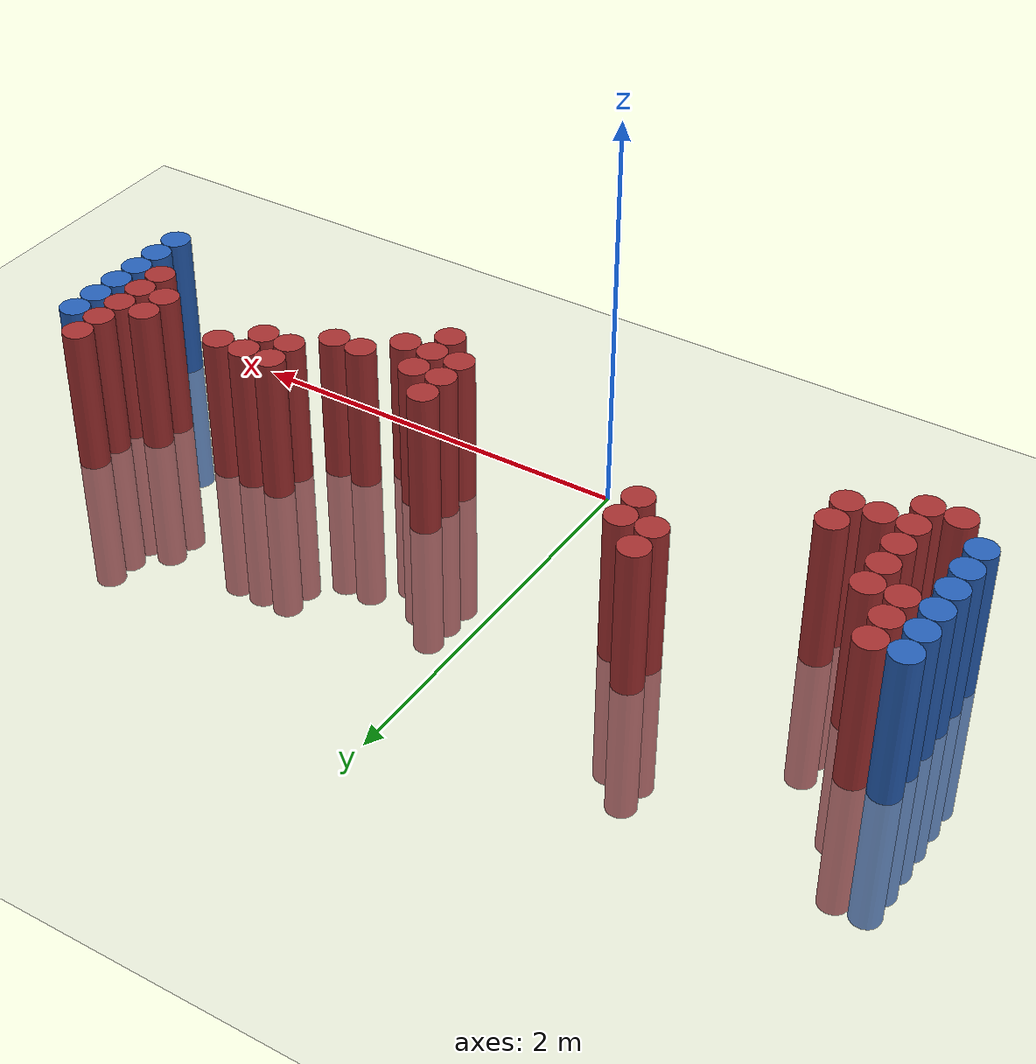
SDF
<sdf version="1.6">
 <world name="default">
  <model name="ground_plane">
   <static>1</static>
   <link name="link">
    <collision name="collision">
     <geometry><plane><normal>0 0 1</normal><size>100 100</size></plane></geometry>
     <surface><friction><ode><mu>100</mu><mu2>50</mu2></ode></friction></surface>
    </collision>
    <visual name="visual">
     <cast_shadows>0</cast_shadows>
     <geometry><plane><normal>0 0 1</normal><size>100 100</size></plane></geometry>
     <material>
      <script><uri>file://media/materials/scripts/gazebo.material</uri><name>Gazebo/Grey</name></script>
     </material>
    </visual>
   </link>
  </model>
  <model name="unit_cylinder_97">
   <static>1</static>
   <pose>-1.925000 0.325000 0.000000 0.000000 0.000000 0.000000</pose>
   <link name="link">
    <inertial>
     <mass>1</mass>
     <inertia><ixx>0.145833</ixx><ixy>0</ixy><ixz>0</ixz><iyy>0.145833</iyy><iyz>0</iyz><izz>0.125</izz></inertia>
    </inertial>
    <collision name="collision">
     <geometry><cylinder><radius>0.075000</radius><length>1.5</length></cylinder></geometry>
    </collision>
    <visual name="visual">
     <geometry><cylinder><radius>0.075000</radius><length>1.5</length></cylinder></geometry>
     <material>
      <ambient>0.152000 0.379000 0.720000 1</ambient>
      <diffuse>0.152000 0.379000 0.720000 1</diffuse>
     </material>
     <material>
      <script><name>Gazebo/Grey</name><uri>file://media/materials/scripts/gazebo.material</uri></script>
     </material>
    </visual>
   </link>
  </model>
  <model name="unit_cylinder_98">
   <static>1</static>
   <pose>-1.925000 0.475000 0.000000 0.000000 0.000000 0.000000</pose>
   <link name="link">
    <inertial>
     <mass>1</mass>
     <inertia><ixx>0.145833</ixx><ixy>0</ixy><ixz>0</ixz><iyy>0.145833</iyy><iyz>0</iyz><izz>0.125</izz></inertia>
    </inertial>
    <collision name="collision">
     <geometry><cylinder><radius>0.075000</radius><length>1.5</length></cylinder></geometry>
    </collision>
    <visual name="visual">
     <geometry><cylinder><radius>0.075000</radius><length>1.5</length></cylinder></geometry>
     <material>
      <ambient>0.152000 0.379000 0.720000 1</ambient>
      <diffuse>0.152000 0.379000 0.720000 1</diffuse>
     </material>
     <material>
      <script><name>Gazebo/Grey</name><uri>file://media/materials/scripts/gazebo.material</uri></script>
     </material>
    </visual>
   </link>
  </model>
  <model name="unit_cylinder_99">
   <static>1</static>
   <pose>-1.925000 0.625000 0.000000 0.000000 0.000000 0.000000</pose>
   <link name="link">
    <inertial>
     <mass>1</mass>
     <inertia><ixx>0.145833</ixx><ixy>0</ixy><ixz>0</ixz><iyy>0.145833</iyy><iyz>0</iyz><izz>0.125</izz></inertia>
    </inertial>
    <collision name="collision">
     <geometry><cylinder><radius>0.075000</radius><length>1.5</length></cylinder></geometry>
    </collision>
    <visual name="visual">
     <geometry><cylinder><radius>0.075000</radius><length>1.5</length></cylinder></geometry>
     <material>
      <ambient>0.152000 0.379000 0.720000 1</ambient>
      <diffuse>0.152000 0.379000 0.720000 1</diffuse>
     </material>
     <material>
      <script><name>Gazebo/Grey</name><uri>file://media/materials/scripts/gazebo.material</uri></script>
     </material>
    </visual>
   </link>
  </model>
  <model name="unit_cylinder_100">
   <static>1</static>
   <pose>-1.925000 0.775000 0.000000 0.000000 0.000000 0.000000</pose>
   <link name="link">
    <inertial>
     <mass>1</mass>
     <inertia><ixx>0.145833</ixx><ixy>0</ixy><ixz>0</ixz><iyy>0.145833</iyy><iyz>0</iyz><izz>0.125</izz></inertia>
    </inertial>
    <collision name="collision">
     <geometry><cylinder><radius>0.075000</radius><length>1.5</length></cylinder></geometry>
    </collision>
    <visual name="visual">
     <geometry><cylinder><radius>0.075000</radius><length>1.5</length></cylinder></geometry>
     <material>
      <ambient>0.152000 0.379000 0.720000 1</ambient>
      <diffuse>0.152000 0.379000 0.720000 1</diffuse>
     </material>
     <material>
      <script><name>Gazebo/Grey</name><uri>file://media/materials/scripts/gazebo.material</uri></script>
     </material>
    </visual>
   </link>
  </model>
  <model name="unit_cylinder_101">
   <static>1</static>
   <pose>-1.925000 0.925000 0.000000 0.000000 0.000000 0.000000</pose>
   <link name="link">
    <inertial>
     <mass>1</mass>
     <inertia><ixx>0.145833</ixx><ixy>0</ixy><ixz>0</ixz><iyy>0.145833</iyy><iyz>0</iyz><izz>0.125</izz></inertia>
    </inertial>
    <collision name="collision">
     <geometry><cylinder><radius>0.075000</radius><length>1.5</length></cylinder></geometry>
    </collision>
    <visual name="visual">
     <geometry><cylinder><radius>0.075000</radius><length>1.5</length></cylinder></geometry>
     <material>
      <ambient>0.152000 0.379000 0.720000 1</ambient>
      <diffuse>0.152000 0.379000 0.720000 1</diffuse>
     </material>
     <material>
      <script><name>Gazebo/Grey</name><uri>file://media/materials/scripts/gazebo.material</uri></script>
     </material>
    </visual>
   </link>
  </model>
  <model name="unit_cylinder_102">
   <static>1</static>
   <pose>-1.925000 1.075000 0.000000 0.000000 0.000000 0.000000</pose>
   <link name="link">
    <inertial>
     <mass>1</mass>
     <inertia><ixx>0.145833</ixx><ixy>0</ixy><ixz>0</ixz><iyy>0.145833</iyy><iyz>0</iyz><izz>0.125</izz></inertia>
    </inertial>
    <collision name="collision">
     <geometry><cylinder><radius>0.075000</radius><length>1.5</length></cylinder></geometry>
    </collision>
    <visual name="visual">
     <geometry><cylinder><radius>0.075000</radius><length>1.5</length></cylinder></geometry>
     <material>
      <ambient>0.152000 0.379000 0.720000 1</ambient>
      <diffuse>0.152000 0.379000 0.720000 1</diffuse>
     </material>
     <material>
      <script><name>Gazebo/Grey</name><uri>file://media/materials/scripts/gazebo.material</uri></script>
     </material>
    </visual>
   </link>
  </model>
  <model name="unit_cylinder_126">
   <static>1</static>
   <pose>-1.775000 0.175000 0.000000 0.000000 0.000000 0.000000</pose>
   <link name="link">
    <inertial>
     <mass>1</mass>
     <inertia><ixx>0.145833</ixx><ixy>0</ixy><ixz>0</ixz><iyy>0.145833</iyy><iyz>0</iyz><izz>0.125</izz></inertia>
    </inertial>
    <collision name="collision">
     <geometry><cylinder><radius>0.075000</radius><length>1.5</length></cylinder></geometry>
    </collision>
    <visual name="visual">
     <geometry><cylinder><radius>0.075000</radius><length>1.5</length></cylinder></geometry>
     <material>
      <ambient>0.648000 0.192000 0.192000 1</ambient>
      <diffuse>0.648000 0.192000 0.192000 1</diffuse>
     </material>
     <material>
      <script><name>Gazebo/Grey</name><uri>file://media/materials/scripts/gazebo.material</uri></script>
     </material>
    </visual>
   </link>
  </model>
  <model name="unit_cylinder_127">
   <static>1</static>
   <pose>-1.775000 0.775000 0.000000 0.000000 0.000000 0.000000</pose>
   <link name="link">
    <inertial>
     <mass>1</mass>
     <inertia><ixx>0.145833</ixx><ixy>0</ixy><ixz>0</ixz><iyy>0.145833</iyy><iyz>0</iyz><izz>0.125</izz></inertia>
    </inertial>
    <collision name="collision">
     <geometry><cylinder><radius>0.075000</radius><length>1.5</length></cylinder></geometry>
    </collision>
    <visual name="visual">
     <geometry><cylinder><radius>0.075000</radius><length>1.5</length></cylinder></geometry>
     <material>
      <ambient>0.648000 0.192000 0.192000 1</ambient>
      <diffuse>0.648000 0.192000 0.192000 1</diffuse>
     </material>
     <material>
      <script><name>Gazebo/Grey</name><uri>file://media/materials/scripts/gazebo.material</uri></script>
     </material>
    </visual>
   </link>
  </model>
  <model name="unit_cylinder_128">
   <static>1</static>
   <pose>-1.775000 0.925000 0.000000 0.000000 0.000000 0.000000</pose>
   <link name="link">
    <inertial>
     <mass>1</mass>
     <inertia><ixx>0.145833</ixx><ixy>0</ixy><ixz>0</ixz><iyy>0.145833</iyy><iyz>0</iyz><izz>0.125</izz></inertia>
    </inertial>
    <collision name="collision">
     <geometry><cylinder><radius>0.075000</radius><length>1.5</length></cylinder></geometry>
    </collision>
    <visual name="visual">
     <geometry><cylinder><radius>0.075000</radius><length>1.5</length></cylinder></geometry>
     <material>
      <ambient>0.648000 0.192000 0.192000 1</ambient>
      <diffuse>0.648000 0.192000 0.192000 1</diffuse>
     </material>
     <material>
      <script><name>Gazebo/Grey</name><uri>file://media/materials/scripts/gazebo.material</uri></script>
     </material>
    </visual>
   </link>
  </model>
  <model name="unit_cylinder_129">
   <static>1</static>
   <pose>-1.775000 1.075000 0.000000 0.000000 0.000000 0.000000</pose>
   <link name="link">
    <inertial>
     <mass>1</mass>
     <inertia><ixx>0.145833</ixx><ixy>0</ixy><ixz>0</ixz><iyy>0.145833</iyy><iyz>0</iyz><izz>0.125</izz></inertia>
    </inertial>
    <collision name="collision">
     <geometry><cylinder><radius>0.075000</radius><length>1.5</length></cylinder></geometry>
    </collision>
    <visual name="visual">
     <geometry><cylinder><radius>0.075000</radius><length>1.5</length></cylinder></geometry>
     <material>
      <ambient>0.648000 0.192000 0.192000 1</ambient>
      <diffuse>0.648000 0.192000 0.192000 1</diffuse>
     </material>
     <material>
      <script><name>Gazebo/Grey</name><uri>file://media/materials/scripts/gazebo.material</uri></script>
     </material>
    </visual>
   </link>
  </model>
  <model name="unit_cylinder_139">
   <static>1</static>
   <pose>-1.625000 0.175000 0.000000 0.000000 0.000000 0.000000</pose>
   <link name="link">
    <inertial>
     <mass>1</mass>
     <inertia><ixx>0.145833</ixx><ixy>0</ixy><ixz>0</ixz><iyy>0.145833</iyy><iyz>0</iyz><izz>0.125</izz></inertia>
    </inertial>
    <collision name="collision">
     <geometry><cylinder><radius>0.075000</radius><length>1.5</length></cylinder></geometry>
    </collision>
    <visual name="visual">
     <geometry><cylinder><radius>0.075000</radius><length>1.5</length></cylinder></geometry>
     <material>
      <ambient>0.648000 0.192000 0.192000 1</ambient>
      <diffuse>0.648000 0.192000 0.192000 1</diffuse>
     </material>
     <material>
      <script><name>Gazebo/Grey</name><uri>file://media/materials/scripts/gazebo.material</uri></script>
     </material>
    </visual>
   </link>
  </model>
  <model name="unit_cylinder_140">
   <static>1</static>
   <pose>-1.625000 0.325000 0.000000 0.000000 0.000000 0.000000</pose>
   <link name="link">
    <inertial>
     <mass>1</mass>
     <inertia><ixx>0.145833</ixx><ixy>0</ixy><ixz>0</ixz><iyy>0.145833</iyy><iyz>0</iyz><izz>0.125</izz></inertia>
    </inertial>
    <collision name="collision">
     <geometry><cylinder><radius>0.075000</radius><length>1.5</length></cylinder></geometry>
    </collision>
    <visual name="visual">
     <geometry><cylinder><radius>0.075000</radius><length>1.5</length></cylinder></geometry>
     <material>
      <ambient>0.648000 0.192000 0.192000 1</ambient>
      <diffuse>0.648000 0.192000 0.192000 1</diffuse>
     </material>
     <material>
      <script><name>Gazebo/Grey</name><uri>file://media/materials/scripts/gazebo.material</uri></script>
     </material>
    </visual>
   </link>
  </model>
  <model name="unit_cylinder_141">
   <static>1</static>
   <pose>-1.625000 0.475000 0.000000 0.000000 0.000000 0.000000</pose>
   <link name="link">
    <inertial>
     <mass>1</mass>
     <inertia><ixx>0.145833</ixx><ixy>0</ixy><ixz>0</ixz><iyy>0.145833</iyy><iyz>0</iyz><izz>0.125</izz></inertia>
    </inertial>
    <collision name="collision">
     <geometry><cylinder><radius>0.075000</radius><length>1.5</length></cylinder></geometry>
    </collision>
    <visual name="visual">
     <geometry><cylinder><radius>0.075000</radius><length>1.5</length></cylinder></geometry>
     <material>
      <ambient>0.648000 0.192000 0.192000 1</ambient>
      <diffuse>0.648000 0.192000 0.192000 1</diffuse>
     </material>
     <material>
      <script><name>Gazebo/Grey</name><uri>file://media/materials/scripts/gazebo.material</uri></script>
     </material>
    </visual>
   </link>
  </model>
  <model name="unit_cylinder_142">
   <static>1</static>
   <pose>-1.625000 0.625000 0.000000 0.000000 0.000000 0.000000</pose>
   <link name="link">
    <inertial>
     <mass>1</mass>
     <inertia><ixx>0.145833</ixx><ixy>0</ixy><ixz>0</ixz><iyy>0.145833</iyy><iyz>0</iyz><izz>0.125</izz></inertia>
    </inertial>
    <collision name="collision">
     <geometry><cylinder><radius>0.075000</radius><length>1.5</length></cylinder></geometry>
    </collision>
    <visual name="visual">
     <geometry><cylinder><radius>0.075000</radius><length>1.5</length></cylinder></geometry>
     <material>
      <ambient>0.648000 0.192000 0.192000 1</ambient>
      <diffuse>0.648000 0.192000 0.192000 1</diffuse>
     </material>
     <material>
      <script><name>Gazebo/Grey</name><uri>file://media/materials/scripts/gazebo.material</uri></script>
     </material>
    </visual>
   </link>
  </model>
  <model name="unit_cylinder_143">
   <static>1</static>
   <pose>-1.625000 0.775000 0.000000 0.000000 0.000000 0.000000</pose>
   <link name="link">
    <inertial>
     <mass>1</mass>
     <inertia><ixx>0.145833</ixx><ixy>0</ixy><ixz>0</ixz><iyy>0.145833</iyy><iyz>0</iyz><izz>0.125</izz></inertia>
    </inertial>
    <collision name="collision">
     <geometry><cylinder><radius>0.075000</radius><length>1.5</length></cylinder></geometry>
    </collision>
    <visual name="visual">
     <geometry><cylinder><radius>0.075000</radius><length>1.5</length></cylinder></geometry>
     <material>
      <ambient>0.648000 0.192000 0.192000 1</ambient>
      <diffuse>0.648000 0.192000 0.192000 1</diffuse>
     </material>
     <material>
      <script><name>Gazebo/Grey</name><uri>file://media/materials/scripts/gazebo.material</uri></script>
     </material>
    </visual>
   </link>
  </model>
  <model name="unit_cylinder_150">
   <static>1</static>
   <pose>-1.475000 0.325000 0.000000 0.000000 0.000000 0.000000</pose>
   <link name="link">
    <inertial>
     <mass>1</mass>
     <inertia><ixx>0.145833</ixx><ixy>0</ixy><ixz>0</ixz><iyy>0.145833</iyy><iyz>0</iyz><izz>0.125</izz></inertia>
    </inertial>
    <collision name="collision">
     <geometry><cylinder><radius>0.075000</radius><length>1.5</length></cylinder></geometry>
    </collision>
    <visual name="visual">
     <geometry><cylinder><radius>0.075000</radius><length>1.5</length></cylinder></geometry>
     <material>
      <ambient>0.648000 0.192000 0.192000 1</ambient>
      <diffuse>0.648000 0.192000 0.192000 1</diffuse>
     </material>
     <material>
      <script><name>Gazebo/Grey</name><uri>file://media/materials/scripts/gazebo.material</uri></script>
     </material>
    </visual>
   </link>
  </model>
  <model name="unit_cylinder_159">
   <static>1</static>
   <pose>-1.325000 0.325000 0.000000 0.000000 0.000000 0.000000</pose>
   <link name="link">
    <inertial>
     <mass>1</mass>
     <inertia><ixx>0.145833</ixx><ixy>0</ixy><ixz>0</ixz><iyy>0.145833</iyy><iyz>0</iyz><izz>0.125</izz></inertia>
    </inertial>
    <collision name="collision">
     <geometry><cylinder><radius>0.075000</radius><length>1.5</length></cylinder></geometry>
    </collision>
    <visual name="visual">
     <geometry><cylinder><radius>0.075000</radius><length>1.5</length></cylinder></geometry>
     <material>
      <ambient>0.648000 0.192000 0.192000 1</ambient>
      <diffuse>0.648000 0.192000 0.192000 1</diffuse>
     </material>
     <material>
      <script><name>Gazebo/Grey</name><uri>file://media/materials/scripts/gazebo.material</uri></script>
     </material>
    </visual>
   </link>
  </model>
  <model name="unit_cylinder_160">
   <static>1</static>
   <pose>-1.325000 0.475000 0.000000 0.000000 0.000000 0.000000</pose>
   <link name="link">
    <inertial>
     <mass>1</mass>
     <inertia><ixx>0.145833</ixx><ixy>0</ixy><ixz>0</ixz><iyy>0.145833</iyy><iyz>0</iyz><izz>0.125</izz></inertia>
    </inertial>
    <collision name="collision">
     <geometry><cylinder><radius>0.075000</radius><length>1.5</length></cylinder></geometry>
    </collision>
    <visual name="visual">
     <geometry><cylinder><radius>0.075000</radius><length>1.5</length></cylinder></geometry>
     <material>
      <ambient>0.648000 0.192000 0.192000 1</ambient>
      <diffuse>0.648000 0.192000 0.192000 1</diffuse>
     </material>
     <material>
      <script><name>Gazebo/Grey</name><uri>file://media/materials/scripts/gazebo.material</uri></script>
     </material>
    </visual>
   </link>
  </model>
  <model name="unit_cylinder_181">
   <static>1</static>
   <pose>-0.725000 0.925000 0.000000 0.000000 0.000000 0.000000</pose>
   <link name="link">
    <inertial>
     <mass>1</mass>
     <inertia><ixx>0.145833</ixx><ixy>0</ixy><ixz>0</ixz><iyy>0.145833</iyy><iyz>0</iyz><izz>0.125</izz></inertia>
    </inertial>
    <collision name="collision">
     <geometry><cylinder><radius>0.075000</radius><length>1.5</length></cylinder></geometry>
    </collision>
    <visual name="visual">
     <geometry><cylinder><radius>0.075000</radius><length>1.5</length></cylinder></geometry>
     <material>
      <ambient>0.648000 0.192000 0.192000 1</ambient>
      <diffuse>0.648000 0.192000 0.192000 1</diffuse>
     </material>
     <material>
      <script><name>Gazebo/Grey</name><uri>file://media/materials/scripts/gazebo.material</uri></script>
     </material>
    </visual>
   </link>
  </model>
  <model name="unit_cylinder_182">
   <static>1</static>
   <pose>-0.725000 1.075000 0.000000 0.000000 0.000000 0.000000</pose>
   <link name="link">
    <inertial>
     <mass>1</mass>
     <inertia><ixx>0.145833</ixx><ixy>0</ixy><ixz>0</ixz><iyy>0.145833</iyy><iyz>0</iyz><izz>0.125</izz></inertia>
    </inertial>
    <collision name="collision">
     <geometry><cylinder><radius>0.075000</radius><length>1.5</length></cylinder></geometry>
    </collision>
    <visual name="visual">
     <geometry><cylinder><radius>0.075000</radius><length>1.5</length></cylinder></geometry>
     <material>
      <ambient>0.648000 0.192000 0.192000 1</ambient>
      <diffuse>0.648000 0.192000 0.192000 1</diffuse>
     </material>
     <material>
      <script><name>Gazebo/Grey</name><uri>file://media/materials/scripts/gazebo.material</uri></script>
     </material>
    </visual>
   </link>
  </model>
  <model name="unit_cylinder_186">
   <static>1</static>
   <pose>-0.575000 0.775000 0.000000 0.000000 0.000000 0.000000</pose>
   <link name="link">
    <inertial>
     <mass>1</mass>
     <inertia><ixx>0.145833</ixx><ixy>0</ixy><ixz>0</ixz><iyy>0.145833</iyy><iyz>0</iyz><izz>0.125</izz></inertia>
    </inertial>
    <collision name="collision">
     <geometry><cylinder><radius>0.075000</radius><length>1.5</length></cylinder></geometry>
    </collision>
    <visual name="visual">
     <geometry><cylinder><radius>0.075000</radius><length>1.5</length></cylinder></geometry>
     <material>
      <ambient>0.648000 0.192000 0.192000 1</ambient>
      <diffuse>0.648000 0.192000 0.192000 1</diffuse>
     </material>
     <material>
      <script><name>Gazebo/Grey</name><uri>file://media/materials/scripts/gazebo.material</uri></script>
     </material>
    </visual>
   </link>
  </model>
  <model name="unit_cylinder_187">
   <static>1</static>
   <pose>-0.575000 0.925000 0.000000 0.000000 0.000000 0.000000</pose>
   <link name="link">
    <inertial>
     <mass>1</mass>
     <inertia><ixx>0.145833</ixx><ixy>0</ixy><ixz>0</ixz><iyy>0.145833</iyy><iyz>0</iyz><izz>0.125</izz></inertia>
    </inertial>
    <collision name="collision">
     <geometry><cylinder><radius>0.075000</radius><length>1.5</length></cylinder></geometry>
    </collision>
    <visual name="visual">
     <geometry><cylinder><radius>0.075000</radius><length>1.5</length></cylinder></geometry>
     <material>
      <ambient>0.648000 0.192000 0.192000 1</ambient>
      <diffuse>0.648000 0.192000 0.192000 1</diffuse>
     </material>
     <material>
      <script><name>Gazebo/Grey</name><uri>file://media/materials/scripts/gazebo.material</uri></script>
     </material>
    </visual>
   </link>
  </model>
  <model name="unit_cylinder_197">
   <static>1</static>
   <pose>0.625000 0.325000 0.000000 0.000000 0.000000 0.000000</pose>
   <link name="link">
    <inertial>
     <mass>1</mass>
     <inertia><ixx>0.145833</ixx><ixy>0</ixy><ixz>0</ixz><iyy>0.145833</iyy><iyz>0</iyz><izz>0.125</izz></inertia>
    </inertial>
    <collision name="collision">
     <geometry><cylinder><radius>0.075000</radius><length>1.5</length></cylinder></geometry>
    </collision>
    <visual name="visual">
     <geometry><cylinder><radius>0.075000</radius><length>1.5</length></cylinder></geometry>
     <material>
      <ambient>0.648000 0.192000 0.192000 1</ambient>
      <diffuse>0.648000 0.192000 0.192000 1</diffuse>
     </material>
     <material>
      <script><name>Gazebo/Grey</name><uri>file://media/materials/scripts/gazebo.material</uri></script>
     </material>
    </visual>
   </link>
  </model>
  <model name="unit_cylinder_198">
   <static>1</static>
   <pose>0.625000 0.475000 0.000000 0.000000 0.000000 0.000000</pose>
   <link name="link">
    <inertial>
     <mass>1</mass>
     <inertia><ixx>0.145833</ixx><ixy>0</ixy><ixz>0</ixz><iyy>0.145833</iyy><iyz>0</iyz><izz>0.125</izz></inertia>
    </inertial>
    <collision name="collision">
     <geometry><cylinder><radius>0.075000</radius><length>1.5</length></cylinder></geometry>
    </collision>
    <visual name="visual">
     <geometry><cylinder><radius>0.075000</radius><length>1.5</length></cylinder></geometry>
     <material>
      <ambient>0.648000 0.192000 0.192000 1</ambient>
      <diffuse>0.648000 0.192000 0.192000 1</diffuse>
     </material>
     <material>
      <script><name>Gazebo/Grey</name><uri>file://media/materials/scripts/gazebo.material</uri></script>
     </material>
    </visual>
   </link>
  </model>
  <model name="unit_cylinder_199">
   <static>1</static>
   <pose>0.625000 0.625000 0.000000 0.000000 0.000000 0.000000</pose>
   <link name="link">
    <inertial>
     <mass>1</mass>
     <inertia><ixx>0.145833</ixx><ixy>0</ixy><ixz>0</ixz><iyy>0.145833</iyy><iyz>0</iyz><izz>0.125</izz></inertia>
    </inertial>
    <collision name="collision">
     <geometry><cylinder><radius>0.075000</radius><length>1.5</length></cylinder></geometry>
    </collision>
    <visual name="visual">
     <geometry><cylinder><radius>0.075000</radius><length>1.5</length></cylinder></geometry>
     <material>
      <ambient>0.648000 0.192000 0.192000 1</ambient>
      <diffuse>0.648000 0.192000 0.192000 1</diffuse>
     </material>
     <material>
      <script><name>Gazebo/Grey</name><uri>file://media/materials/scripts/gazebo.material</uri></script>
     </material>
    </visual>
   </link>
  </model>
  <model name="unit_cylinder_200">
   <static>1</static>
   <pose>0.775000 0.175000 0.000000 0.000000 0.000000 0.000000</pose>
   <link name="link">
    <inertial>
     <mass>1</mass>
     <inertia><ixx>0.145833</ixx><ixy>0</ixy><ixz>0</ixz><iyy>0.145833</iyy><iyz>0</iyz><izz>0.125</izz></inertia>
    </inertial>
    <collision name="collision">
     <geometry><cylinder><radius>0.075000</radius><length>1.5</length></cylinder></geometry>
    </collision>
    <visual name="visual">
     <geometry><cylinder><radius>0.075000</radius><length>1.5</length></cylinder></geometry>
     <material>
      <ambient>0.648000 0.192000 0.192000 1</ambient>
      <diffuse>0.648000 0.192000 0.192000 1</diffuse>
     </material>
     <material>
      <script><name>Gazebo/Grey</name><uri>file://media/materials/scripts/gazebo.material</uri></script>
     </material>
    </visual>
   </link>
  </model>
  <model name="unit_cylinder_201">
   <static>1</static>
   <pose>0.775000 0.325000 0.000000 0.000000 0.000000 0.000000</pose>
   <link name="link">
    <inertial>
     <mass>1</mass>
     <inertia><ixx>0.145833</ixx><ixy>0</ixy><ixz>0</ixz><iyy>0.145833</iyy><iyz>0</iyz><izz>0.125</izz></inertia>
    </inertial>
    <collision name="collision">
     <geometry><cylinder><radius>0.075000</radius><length>1.5</length></cylinder></geometry>
    </collision>
    <visual name="visual">
     <geometry><cylinder><radius>0.075000</radius><length>1.5</length></cylinder></geometry>
     <material>
      <ambient>0.648000 0.192000 0.192000 1</ambient>
      <diffuse>0.648000 0.192000 0.192000 1</diffuse>
     </material>
     <material>
      <script><name>Gazebo/Grey</name><uri>file://media/materials/scripts/gazebo.material</uri></script>
     </material>
    </visual>
   </link>
  </model>
  <model name="unit_cylinder_202">
   <static>1</static>
   <pose>0.775000 0.475000 0.000000 0.000000 0.000000 0.000000</pose>
   <link name="link">
    <inertial>
     <mass>1</mass>
     <inertia><ixx>0.145833</ixx><ixy>0</ixy><ixz>0</ixz><iyy>0.145833</iyy><iyz>0</iyz><izz>0.125</izz></inertia>
    </inertial>
    <collision name="collision">
     <geometry><cylinder><radius>0.075000</radius><length>1.5</length></cylinder></geometry>
    </collision>
    <visual name="visual">
     <geometry><cylinder><radius>0.075000</radius><length>1.5</length></cylinder></geometry>
     <material>
      <ambient>0.648000 0.192000 0.192000 1</ambient>
      <diffuse>0.648000 0.192000 0.192000 1</diffuse>
     </material>
     <material>
      <script><name>Gazebo/Grey</name><uri>file://media/materials/scripts/gazebo.material</uri></script>
     </material>
    </visual>
   </link>
  </model>
  <model name="unit_cylinder_205">
   <static>1</static>
   <pose>0.925000 0.325000 0.000000 0.000000 0.000000 0.000000</pose>
   <link name="link">
    <inertial>
     <mass>1</mass>
     <inertia><ixx>0.145833</ixx><ixy>0</ixy><ixz>0</ixz><iyy>0.145833</iyy><iyz>0</iyz><izz>0.125</izz></inertia>
    </inertial>
    <collision name="collision">
     <geometry><cylinder><radius>0.075000</radius><length>1.5</length></cylinder></geometry>
    </collision>
    <visual name="visual">
     <geometry><cylinder><radius>0.075000</radius><length>1.5</length></cylinder></geometry>
     <material>
      <ambient>0.648000 0.192000 0.192000 1</ambient>
      <diffuse>0.648000 0.192000 0.192000 1</diffuse>
     </material>
     <material>
      <script><name>Gazebo/Grey</name><uri>file://media/materials/scripts/gazebo.material</uri></script>
     </material>
    </visual>
   </link>
  </model>
  <model name="unit_cylinder_208">
   <static>1</static>
   <pose>1.075000 0.475000 0.000000 0.000000 0.000000 0.000000</pose>
   <link name="link">
    <inertial>
     <mass>1</mass>
     <inertia><ixx>0.145833</ixx><ixy>0</ixy><ixz>0</ixz><iyy>0.145833</iyy><iyz>0</iyz><izz>0.125</izz></inertia>
    </inertial>
    <collision name="collision">
     <geometry><cylinder><radius>0.075000</radius><length>1.5</length></cylinder></geometry>
    </collision>
    <visual name="visual">
     <geometry><cylinder><radius>0.075000</radius><length>1.5</length></cylinder></geometry>
     <material>
      <ambient>0.648000 0.192000 0.192000 1</ambient>
      <diffuse>0.648000 0.192000 0.192000 1</diffuse>
     </material>
     <material>
      <script><name>Gazebo/Grey</name><uri>file://media/materials/scripts/gazebo.material</uri></script>
     </material>
    </visual>
   </link>
  </model>
  <model name="unit_cylinder_209">
   <static>1</static>
   <pose>1.225000 0.475000 0.000000 0.000000 0.000000 0.000000</pose>
   <link name="link">
    <inertial>
     <mass>1</mass>
     <inertia><ixx>0.145833</ixx><ixy>0</ixy><ixz>0</ixz><iyy>0.145833</iyy><iyz>0</iyz><izz>0.125</izz></inertia>
    </inertial>
    <collision name="collision">
     <geometry><cylinder><radius>0.075000</radius><length>1.5</length></cylinder></geometry>
    </collision>
    <visual name="visual">
     <geometry><cylinder><radius>0.075000</radius><length>1.5</length></cylinder></geometry>
     <material>
      <ambient>0.648000 0.192000 0.192000 1</ambient>
      <diffuse>0.648000 0.192000 0.192000 1</diffuse>
     </material>
     <material>
      <script><name>Gazebo/Grey</name><uri>file://media/materials/scripts/gazebo.material</uri></script>
     </material>
    </visual>
   </link>
  </model>
  <model name="unit_cylinder_212">
   <static>1</static>
   <pose>1.375000 0.625000 0.000000 0.000000 0.000000 0.000000</pose>
   <link name="link">
    <inertial>
     <mass>1</mass>
     <inertia><ixx>0.145833</ixx><ixy>0</ixy><ixz>0</ixz><iyy>0.145833</iyy><iyz>0</iyz><izz>0.125</izz></inertia>
    </inertial>
    <collision name="collision">
     <geometry><cylinder><radius>0.075000</radius><length>1.5</length></cylinder></geometry>
    </collision>
    <visual name="visual">
     <geometry><cylinder><radius>0.075000</radius><length>1.5</length></cylinder></geometry>
     <material>
      <ambient>0.648000 0.192000 0.192000 1</ambient>
      <diffuse>0.648000 0.192000 0.192000 1</diffuse>
     </material>
     <material>
      <script><name>Gazebo/Grey</name><uri>file://media/materials/scripts/gazebo.material</uri></script>
     </material>
    </visual>
   </link>
  </model>
  <model name="unit_cylinder_213">
   <static>1</static>
   <pose>1.375000 0.775000 0.000000 0.000000 0.000000 0.000000</pose>
   <link name="link">
    <inertial>
     <mass>1</mass>
     <inertia><ixx>0.145833</ixx><ixy>0</ixy><ixz>0</ixz><iyy>0.145833</iyy><iyz>0</iyz><izz>0.125</izz></inertia>
    </inertial>
    <collision name="collision">
     <geometry><cylinder><radius>0.075000</radius><length>1.5</length></cylinder></geometry>
    </collision>
    <visual name="visual">
     <geometry><cylinder><radius>0.075000</radius><length>1.5</length></cylinder></geometry>
     <material>
      <ambient>0.648000 0.192000 0.192000 1</ambient>
      <diffuse>0.648000 0.192000 0.192000 1</diffuse>
     </material>
     <material>
      <script><name>Gazebo/Grey</name><uri>file://media/materials/scripts/gazebo.material</uri></script>
     </material>
    </visual>
   </link>
  </model>
  <model name="unit_cylinder_215">
   <static>1</static>
   <pose>1.525000 0.625000 0.000000 0.000000 0.000000 0.000000</pose>
   <link name="link">
    <inertial>
     <mass>1</mass>
     <inertia><ixx>0.145833</ixx><ixy>0</ixy><ixz>0</ixz><iyy>0.145833</iyy><iyz>0</iyz><izz>0.125</izz></inertia>
    </inertial>
    <collision name="collision">
     <geometry><cylinder><radius>0.075000</radius><length>1.5</length></cylinder></geometry>
    </collision>
    <visual name="visual">
     <geometry><cylinder><radius>0.075000</radius><length>1.5</length></cylinder></geometry>
     <material>
      <ambient>0.648000 0.192000 0.192000 1</ambient>
      <diffuse>0.648000 0.192000 0.192000 1</diffuse>
     </material>
     <material>
      <script><name>Gazebo/Grey</name><uri>file://media/materials/scripts/gazebo.material</uri></script>
     </material>
    </visual>
   </link>
  </model>
  <model name="unit_cylinder_216">
   <static>1</static>
   <pose>1.525000 0.775000 0.000000 0.000000 0.000000 0.000000</pose>
   <link name="link">
    <inertial>
     <mass>1</mass>
     <inertia><ixx>0.145833</ixx><ixy>0</ixy><ixz>0</ixz><iyy>0.145833</iyy><iyz>0</iyz><izz>0.125</izz></inertia>
    </inertial>
    <collision name="collision">
     <geometry><cylinder><radius>0.075000</radius><length>1.5</length></cylinder></geometry>
    </collision>
    <visual name="visual">
     <geometry><cylinder><radius>0.075000</radius><length>1.5</length></cylinder></geometry>
     <material>
      <ambient>0.648000 0.192000 0.192000 1</ambient>
      <diffuse>0.648000 0.192000 0.192000 1</diffuse>
     </material>
     <material>
      <script><name>Gazebo/Grey</name><uri>file://media/materials/scripts/gazebo.material</uri></script>
     </material>
    </visual>
   </link>
  </model>
  <model name="unit_cylinder_217">
   <static>1</static>
   <pose>1.675000 0.775000 0.000000 0.000000 0.000000 0.000000</pose>
   <link name="link">
    <inertial>
     <mass>1</mass>
     <inertia><ixx>0.145833</ixx><ixy>0</ixy><ixz>0</ixz><iyy>0.145833</iyy><iyz>0</iyz><izz>0.125</izz></inertia>
    </inertial>
    <collision name="collision">
     <geometry><cylinder><radius>0.075000</radius><length>1.5</length></cylinder></geometry>
    </collision>
    <visual name="visual">
     <geometry><cylinder><radius>0.075000</radius><length>1.5</length></cylinder></geometry>
     <material>
      <ambient>0.648000 0.192000 0.192000 1</ambient>
      <diffuse>0.648000 0.192000 0.192000 1</diffuse>
     </material>
     <material>
      <script><name>Gazebo/Grey</name><uri>file://media/materials/scripts/gazebo.material</uri></script>
     </material>
    </visual>
   </link>
  </model>
  <model name="unit_cylinder_227">
   <static>1</static>
   <pose>2.125000 0.625000 0.000000 0.000000 0.000000 0.000000</pose>
   <link name="link">
    <inertial>
     <mass>1</mass>
     <inertia><ixx>0.145833</ixx><ixy>0</ixy><ixz>0</ixz><iyy>0.145833</iyy><iyz>0</iyz><izz>0.125</izz></inertia>
    </inertial>
    <collision name="collision">
     <geometry><cylinder><radius>0.075000</radius><length>1.5</length></cylinder></geometry>
    </collision>
    <visual name="visual">
     <geometry><cylinder><radius>0.075000</radius><length>1.5</length></cylinder></geometry>
     <material>
      <ambient>0.648000 0.192000 0.192000 1</ambient>
      <diffuse>0.648000 0.192000 0.192000 1</diffuse>
     </material>
     <material>
      <script><name>Gazebo/Grey</name><uri>file://media/materials/scripts/gazebo.material</uri></script>
     </material>
    </visual>
   </link>
  </model>
  <model name="unit_cylinder_228">
   <static>1</static>
   <pose>2.125000 0.775000 0.000000 0.000000 0.000000 0.000000</pose>
   <link name="link">
    <inertial>
     <mass>1</mass>
     <inertia><ixx>0.145833</ixx><ixy>0</ixy><ixz>0</ixz><iyy>0.145833</iyy><iyz>0</iyz><izz>0.125</izz></inertia>
    </inertial>
    <collision name="collision">
     <geometry><cylinder><radius>0.075000</radius><length>1.5</length></cylinder></geometry>
    </collision>
    <visual name="visual">
     <geometry><cylinder><radius>0.075000</radius><length>1.5</length></cylinder></geometry>
     <material>
      <ambient>0.648000 0.192000 0.192000 1</ambient>
      <diffuse>0.648000 0.192000 0.192000 1</diffuse>
     </material>
     <material>
      <script><name>Gazebo/Grey</name><uri>file://media/materials/scripts/gazebo.material</uri></script>
     </material>
    </visual>
   </link>
  </model>
  <model name="unit_cylinder_240">
   <static>1</static>
   <pose>2.275000 0.475000 0.000000 0.000000 0.000000 0.000000</pose>
   <link name="link">
    <inertial>
     <mass>1</mass>
     <inertia><ixx>0.145833</ixx><ixy>0</ixy><ixz>0</ixz><iyy>0.145833</iyy><iyz>0</iyz><izz>0.125</izz></inertia>
    </inertial>
    <collision name="collision">
     <geometry><cylinder><radius>0.075000</radius><length>1.5</length></cylinder></geometry>
    </collision>
    <visual name="visual">
     <geometry><cylinder><radius>0.075000</radius><length>1.5</length></cylinder></geometry>
     <material>
      <ambient>0.648000 0.192000 0.192000 1</ambient>
      <diffuse>0.648000 0.192000 0.192000 1</diffuse>
     </material>
     <material>
      <script><name>Gazebo/Grey</name><uri>file://media/materials/scripts/gazebo.material</uri></script>
     </material>
    </visual>
   </link>
  </model>
  <model name="unit_cylinder_241">
   <static>1</static>
   <pose>2.275000 0.625000 0.000000 0.000000 0.000000 0.000000</pose>
   <link name="link">
    <inertial>
     <mass>1</mass>
     <inertia><ixx>0.145833</ixx><ixy>0</ixy><ixz>0</ixz><iyy>0.145833</iyy><iyz>0</iyz><izz>0.125</izz></inertia>
    </inertial>
    <collision name="collision">
     <geometry><cylinder><radius>0.075000</radius><length>1.5</length></cylinder></geometry>
    </collision>
    <visual name="visual">
     <geometry><cylinder><radius>0.075000</radius><length>1.5</length></cylinder></geometry>
     <material>
      <ambient>0.648000 0.192000 0.192000 1</ambient>
      <diffuse>0.648000 0.192000 0.192000 1</diffuse>
     </material>
     <material>
      <script><name>Gazebo/Grey</name><uri>file://media/materials/scripts/gazebo.material</uri></script>
     </material>
    </visual>
   </link>
  </model>
  <model name="unit_cylinder_242">
   <static>1</static>
   <pose>2.275000 0.775000 0.000000 0.000000 0.000000 0.000000</pose>
   <link name="link">
    <inertial>
     <mass>1</mass>
     <inertia><ixx>0.145833</ixx><ixy>0</ixy><ixz>0</ixz><iyy>0.145833</iyy><iyz>0</iyz><izz>0.125</izz></inertia>
    </inertial>
    <collision name="collision">
     <geometry><cylinder><radius>0.075000</radius><length>1.5</length></cylinder></geometry>
    </collision>
    <visual name="visual">
     <geometry><cylinder><radius>0.075000</radius><length>1.5</length></cylinder></geometry>
     <material>
      <ambient>0.648000 0.192000 0.192000 1</ambient>
      <diffuse>0.648000 0.192000 0.192000 1</diffuse>
     </material>
     <material>
      <script><name>Gazebo/Grey</name><uri>file://media/materials/scripts/gazebo.material</uri></script>
     </material>
    </visual>
   </link>
  </model>
  <model name="unit_cylinder_243">
   <static>1</static>
   <pose>2.275000 0.925000 0.000000 0.000000 0.000000 0.000000</pose>
   <link name="link">
    <inertial>
     <mass>1</mass>
     <inertia><ixx>0.145833</ixx><ixy>0</ixy><ixz>0</ixz><iyy>0.145833</iyy><iyz>0</iyz><izz>0.125</izz></inertia>
    </inertial>
    <collision name="collision">
     <geometry><cylinder><radius>0.075000</radius><length>1.5</length></cylinder></geometry>
    </collision>
    <visual name="visual">
     <geometry><cylinder><radius>0.075000</radius><length>1.5</length></cylinder></geometry>
     <material>
      <ambient>0.648000 0.192000 0.192000 1</ambient>
      <diffuse>0.648000 0.192000 0.192000 1</diffuse>
     </material>
     <material>
      <script><name>Gazebo/Grey</name><uri>file://media/materials/scripts/gazebo.material</uri></script>
     </material>
    </visual>
   </link>
  </model>
  <model name="unit_cylinder_244">
   <static>1</static>
   <pose>2.275000 1.075000 0.000000 0.000000 0.000000 0.000000</pose>
   <link name="link">
    <inertial>
     <mass>1</mass>
     <inertia><ixx>0.145833</ixx><ixy>0</ixy><ixz>0</ixz><iyy>0.145833</iyy><iyz>0</iyz><izz>0.125</izz></inertia>
    </inertial>
    <collision name="collision">
     <geometry><cylinder><radius>0.075000</radius><length>1.5</length></cylinder></geometry>
    </collision>
    <visual name="visual">
     <geometry><cylinder><radius>0.075000</radius><length>1.5</length></cylinder></geometry>
     <material>
      <ambient>0.648000 0.192000 0.192000 1</ambient>
      <diffuse>0.648000 0.192000 0.192000 1</diffuse>
     </material>
     <material>
      <script><name>Gazebo/Grey</name><uri>file://media/materials/scripts/gazebo.material</uri></script>
     </material>
    </visual>
   </link>
  </model>
  <model name="unit_cylinder_261">
   <static>1</static>
   <pose>2.425000 0.175000 0.000000 0.000000 0.000000 0.000000</pose>
   <link name="link">
    <inertial>
     <mass>1</mass>
     <inertia><ixx>0.145833</ixx><ixy>0</ixy><ixz>0</ixz><iyy>0.145833</iyy><iyz>0</iyz><izz>0.125</izz></inertia>
    </inertial>
    <collision name="collision">
     <geometry><cylinder><radius>0.075000</radius><length>1.5</length></cylinder></geometry>
    </collision>
    <visual name="visual">
     <geometry><cylinder><radius>0.075000</radius><length>1.5</length></cylinder></geometry>
     <material>
      <ambient>0.152000 0.379000 0.720000 1</ambient>
      <diffuse>0.152000 0.379000 0.720000 1</diffuse>
     </material>
     <material>
      <script><name>Gazebo/Grey</name><uri>file://media/materials/scripts/gazebo.material</uri></script>
     </material>
    </visual>
   </link>
  </model>
  <model name="unit_cylinder_262">
   <static>1</static>
   <pose>2.425000 0.325000 0.000000 0.000000 0.000000 0.000000</pose>
   <link name="link">
    <inertial>
     <mass>1</mass>
     <inertia><ixx>0.145833</ixx><ixy>0</ixy><ixz>0</ixz><iyy>0.145833</iyy><iyz>0</iyz><izz>0.125</izz></inertia>
    </inertial>
    <collision name="collision">
     <geometry><cylinder><radius>0.075000</radius><length>1.5</length></cylinder></geometry>
    </collision>
    <visual name="visual">
     <geometry><cylinder><radius>0.075000</radius><length>1.5</length></cylinder></geometry>
     <material>
      <ambient>0.152000 0.379000 0.720000 1</ambient>
      <diffuse>0.152000 0.379000 0.720000 1</diffuse>
     </material>
     <material>
      <script><name>Gazebo/Grey</name><uri>file://media/materials/scripts/gazebo.material</uri></script>
     </material>
    </visual>
   </link>
  </model>
  <model name="unit_cylinder_263">
   <static>1</static>
   <pose>2.425000 0.475000 0.000000 0.000000 0.000000 0.000000</pose>
   <link name="link">
    <inertial>
     <mass>1</mass>
     <inertia><ixx>0.145833</ixx><ixy>0</ixy><ixz>0</ixz><iyy>0.145833</iyy><iyz>0</iyz><izz>0.125</izz></inertia>
    </inertial>
    <collision name="collision">
     <geometry><cylinder><radius>0.075000</radius><length>1.5</length></cylinder></geometry>
    </collision>
    <visual name="visual">
     <geometry><cylinder><radius>0.075000</radius><length>1.5</length></cylinder></geometry>
     <material>
      <ambient>0.152000 0.379000 0.720000 1</ambient>
      <diffuse>0.152000 0.379000 0.720000 1</diffuse>
     </material>
     <material>
      <script><name>Gazebo/Grey</name><uri>file://media/materials/scripts/gazebo.material</uri></script>
     </material>
    </visual>
   </link>
  </model>
  <model name="unit_cylinder_264">
   <static>1</static>
   <pose>2.425000 0.625000 0.000000 0.000000 0.000000 0.000000</pose>
   <link name="link">
    <inertial>
     <mass>1</mass>
     <inertia><ixx>0.145833</ixx><ixy>0</ixy><ixz>0</ixz><iyy>0.145833</iyy><iyz>0</iyz><izz>0.125</izz></inertia>
    </inertial>
    <collision name="collision">
     <geometry><cylinder><radius>0.075000</radius><length>1.5</length></cylinder></geometry>
    </collision>
    <visual name="visual">
     <geometry><cylinder><radius>0.075000</radius><length>1.5</length></cylinder></geometry>
     <material>
      <ambient>0.152000 0.379000 0.720000 1</ambient>
      <diffuse>0.152000 0.379000 0.720000 1</diffuse>
     </material>
     <material>
      <script><name>Gazebo/Grey</name><uri>file://media/materials/scripts/gazebo.material</uri></script>
     </material>
    </visual>
   </link>
  </model>
  <model name="unit_cylinder_265">
   <static>1</static>
   <pose>2.425000 0.775000 0.000000 0.000000 0.000000 0.000000</pose>
   <link name="link">
    <inertial>
     <mass>1</mass>
     <inertia><ixx>0.145833</ixx><ixy>0</ixy><ixz>0</ixz><iyy>0.145833</iyy><iyz>0</iyz><izz>0.125</izz></inertia>
    </inertial>
    <collision name="collision">
     <geometry><cylinder><radius>0.075000</radius><length>1.5</length></cylinder></geometry>
    </collision>
    <visual name="visual">
     <geometry><cylinder><radius>0.075000</radius><length>1.5</length></cylinder></geometry>
     <material>
      <ambient>0.152000 0.379000 0.720000 1</ambient>
      <diffuse>0.152000 0.379000 0.720000 1</diffuse>
     </material>
     <material>
      <script><name>Gazebo/Grey</name><uri>file://media/materials/scripts/gazebo.material</uri></script>
     </material>
    </visual>
   </link>
  </model>
  <model name="unit_cylinder_266">
   <static>1</static>
   <pose>2.425000 0.925000 0.000000 0.000000 0.000000 0.000000</pose>
   <link name="link">
    <inertial>
     <mass>1</mass>
     <inertia><ixx>0.145833</ixx><ixy>0</ixy><ixz>0</ixz><iyy>0.145833</iyy><iyz>0</iyz><izz>0.125</izz></inertia>
    </inertial>
    <collision name="collision">
     <geometry><cylinder><radius>0.075000</radius><length>1.5</length></cylinder></geometry>
    </collision>
    <visual name="visual">
     <geometry><cylinder><radius>0.075000</radius><length>1.5</length></cylinder></geometry>
     <material>
      <ambient>0.152000 0.379000 0.720000 1</ambient>
      <diffuse>0.152000 0.379000 0.720000 1</diffuse>
     </material>
     <material>
      <script><name>Gazebo/Grey</name><uri>file://media/materials/scripts/gazebo.material</uri></script>
     </material>
    </visual>
   </link>
  </model>
 </world>
</sdf>
